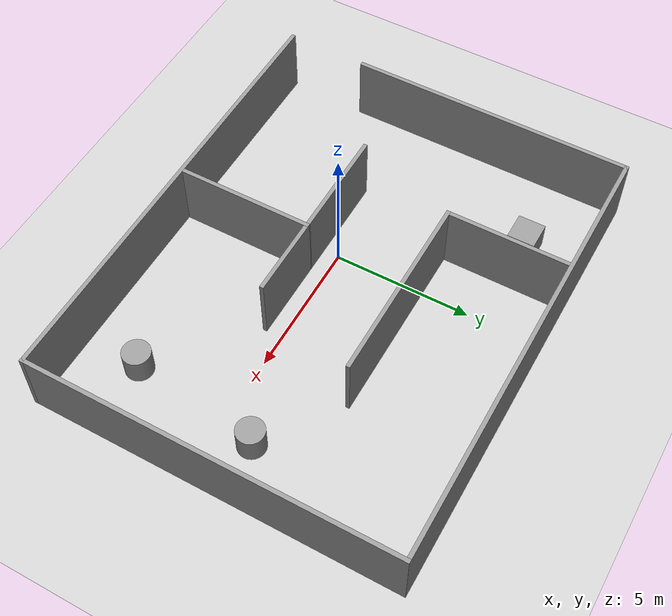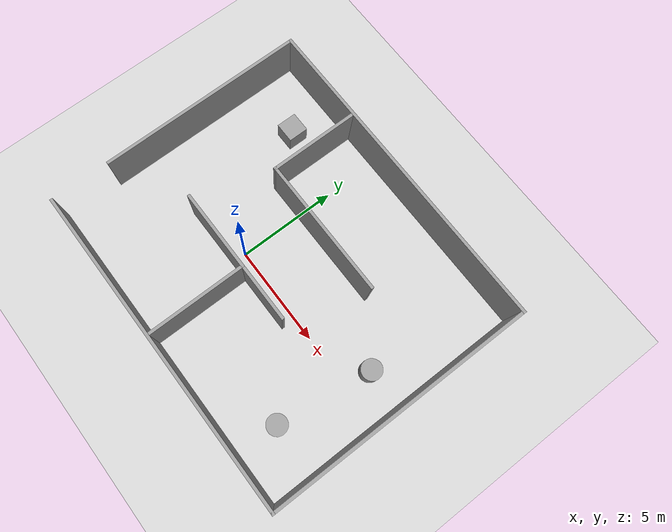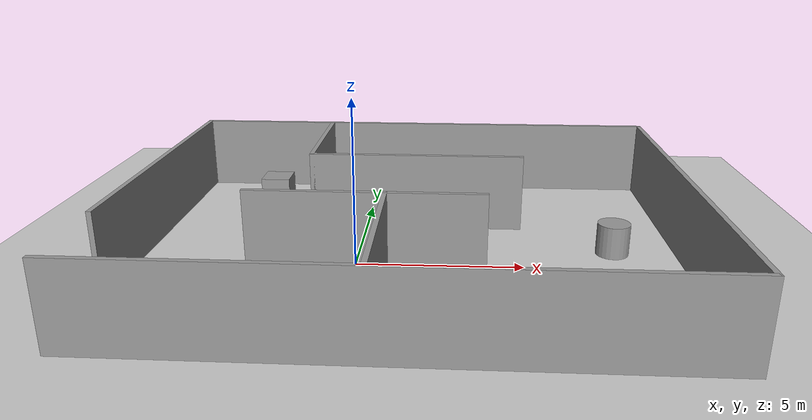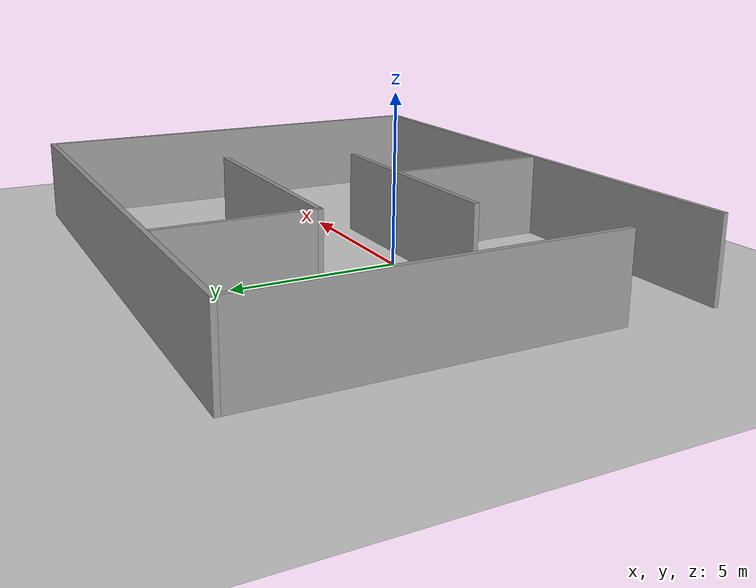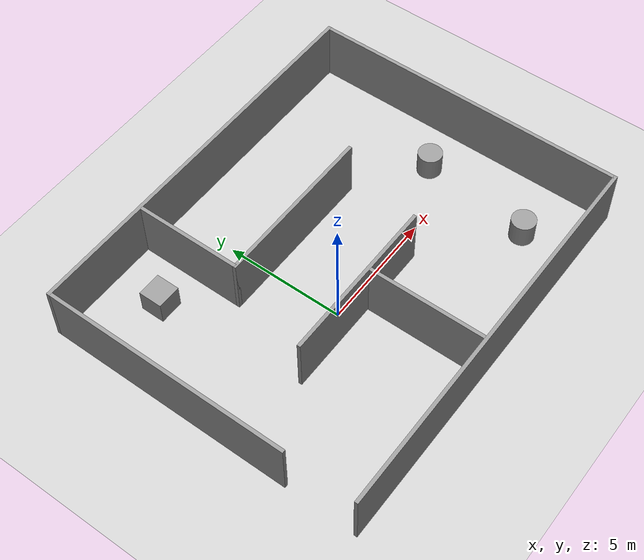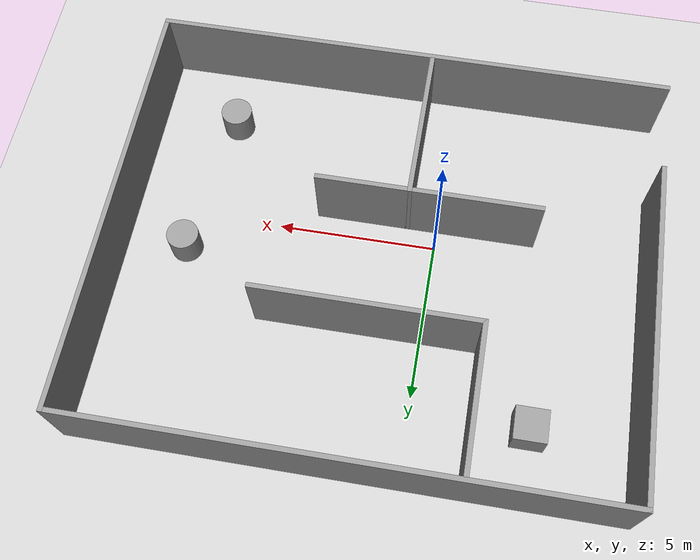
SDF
<sdf version='1.7'>
  <world name='default'>
    <light name='sun' type='directional'>
      <cast_shadows>1</cast_shadows>
      <pose>0 0 10 0 -0 0</pose>
      <diffuse>0.8 0.8 0.8 1</diffuse>
      <specular>0.2 0.2 0.2 1</specular>
      <attenuation>
        <range>1000</range>
        <constant>0.9</constant>
        <linear>0.01</linear>
        <quadratic>0.001</quadratic>
      </attenuation>
      <direction>-0.5 0.1 -0.9</direction>
      <spot>
        <inner_angle>0</inner_angle>
        <outer_angle>0</outer_angle>
        <falloff>0</falloff>
      </spot>
    </light>
    <model name='ground_plane'>
      <static>1</static>
      <link name='link'>
        <collision name='collision'>
          <geometry>
            <plane>
              <normal>0 0 1</normal>
              <size>100 100</size>
            </plane>
          </geometry>
          <surface>
            <friction>
              <ode>
                <mu>100</mu>
                <mu2>50</mu2>
              </ode>
              <torsional>
                <ode />
              </torsional>
            </friction>
            <contact>
              <ode />
            </contact>
            <bounce />
          </surface>
          <max_contacts>10</max_contacts>
        </collision>
        <visual name='visual'>
          <cast_shadows>0</cast_shadows>
          <geometry>
            <plane>
              <normal>0 0 1</normal>
              <size>100 100</size>
            </plane>
          </geometry>
          <material>
            <script>
              <uri>file://media/materials/scripts/gazebo.material</uri>
              <name>Gazebo/Grey</name>
            </script>
          </material>
        </visual>
        <self_collide>0</self_collide>
        <enable_wind>0</enable_wind>
        <kinematic>0</kinematic>
      </link>
    </model>
    <gravity>0 0 -9.8</gravity>
    <magnetic_field>6e-06 2.3e-05 -4.2e-05</magnetic_field>
    <atmosphere type='adiabatic' />
    <physics type='ode'>
      <max_step_size>0.001</max_step_size>
      <real_time_factor>1</real_time_factor>
      <real_time_update_rate>1000</real_time_update_rate>
    </physics>
    <scene>
      <ambient>0.4 0.4 0.4 1</ambient>
      <background>0.7 0.7 0.7 1</background>
      <shadows>1</shadows>
    </scene>
    <audio>
      <device>default</device>
    </audio>
    <wind />
    <spherical_coordinates>
      <surface_model>EARTH_WGS84</surface_model>
      <latitude_deg>0</latitude_deg>
      <longitude_deg>0</longitude_deg>
      <elevation>0</elevation>
      <heading_deg>0</heading_deg>
    </spherical_coordinates>
    <model name='simple_rooms'>
      <pose>1.59879 1.01846 0 0 -0 0</pose>
      <link name='Wall_12'>
        <collision name='Wall_12_Collision'>
          <geometry>
            <box>
              <size>7 0.15 2.5</size>
            </box>
          </geometry>
          <pose>0 0 1.25 0 -0 0</pose>
          <max_contacts>10</max_contacts>
          <surface>
            <contact>
              <ode />
            </contact>
            <bounce />
            <friction>
              <torsional>
                <ode />
              </torsional>
              <ode />
            </friction>
          </surface>
        </collision>
        <visual name='Wall_12_Visual'>
          <pose>0 0 1.25 0 -0 0</pose>
          <geometry>
            <box>
              <size>7 0.15 2.5</size>
            </box>
          </geometry>
          <material>
            <script>
              <uri>file://media/materials/scripts/gazebo.material</uri>
              <name>Gazebo/Grey</name>
            </script>
            <ambient>1 1 1 1</ambient>
          </material>
          <meta>
            <layer>0</layer>
          </meta>
        </visual>
        <pose>0.024632 2.17553 0 0 -0 0</pose>
        <self_collide>0</self_collide>
        <enable_wind>0</enable_wind>
        <kinematic>0</kinematic>
      </link>
      <link name='Wall_18'>
        <collision name='Wall_18_Collision'>
          <geometry>
            <box>
              <size>7 0.15 2.5</size>
            </box>
          </geometry>
          <pose>0 0 1.25 0 -0 0</pose>
          <max_contacts>10</max_contacts>
          <surface>
            <contact>
              <ode />
            </contact>
            <bounce />
            <friction>
              <torsional>
                <ode />
              </torsional>
              <ode />
            </friction>
          </surface>
        </collision>
        <visual name='Wall_18_Visual'>
          <pose>0 0 1.25 0 -0 0</pose>
          <geometry>
            <box>
              <size>7 0.15 2.5</size>
            </box>
          </geometry>
          <material>
            <script>
              <uri>file://media/materials/scripts/gazebo.material</uri>
              <name>Gazebo/Grey</name>
            </script>
            <ambient>1 1 1 1</ambient>
          </material>
          <meta>
            <layer>0</layer>
          </meta>
        </visual>
        <pose>-1.22949 -1.67968 0 0 -0 0</pose>
        <self_collide>0</self_collide>
        <enable_wind>0</enable_wind>
        <kinematic>0</kinematic>
      </link>
      <link name='Wall_21'>
        <collision name='Wall_21_Collision'>
          <geometry>
            <box>
              <size>5 0.15 2.5</size>
            </box>
          </geometry>
          <pose>0 0 1.25 0 -0 0</pose>
          <max_contacts>10</max_contacts>
          <surface>
            <contact>
              <ode />
            </contact>
            <bounce />
            <friction>
              <torsional>
                <ode />
              </torsional>
              <ode />
            </friction>
          </surface>
        </collision>
        <visual name='Wall_21_Visual'>
          <pose>0 0 1.25 0 -0 0</pose>
          <geometry>
            <box>
              <size>5 0.15 2.5</size>
            </box>
          </geometry>
          <material>
            <script>
              <uri>file://media/materials/scripts/gazebo.material</uri>
              <name>Gazebo/Grey</name>
            </script>
            <ambient>1 1 1 1</ambient>
          </material>
          <meta>
            <layer>0</layer>
          </meta>
        </visual>
        <pose>-0.649388 -4.10468 0 0 -0 -1.5708</pose>
        <self_collide>0</self_collide>
        <enable_wind>0</enable_wind>
        <kinematic>0</kinematic>
      </link>
      <link name='Wall_26'>
        <collision name='Wall_26_Collision'>
          <geometry>
            <box>
              <size>4.5 0.15 2.5</size>
            </box>
          </geometry>
          <pose>0 0 1.25 0 -0 0</pose>
          <max_contacts>10</max_contacts>
          <surface>
            <contact>
              <ode />
            </contact>
            <bounce />
            <friction>
              <torsional>
                <ode />
              </torsional>
              <ode />
            </friction>
          </surface>
        </collision>
        <visual name='Wall_26_Visual'>
          <pose>0 0 1.25 0 -0 0</pose>
          <geometry>
            <box>
              <size>4.5 0.15 2.5</size>
            </box>
          </geometry>
          <material>
            <script>
              <uri>file://media/materials/scripts/gazebo.material</uri>
              <name>Gazebo/Grey</name>
            </script>
            <ambient>1 1 1 1</ambient>
          </material>
          <meta>
            <layer>0</layer>
          </meta>
        </visual>
        <pose>-3.40037 4.35053 0 0 -0 1.5708</pose>
        <self_collide>0</self_collide>
        <enable_wind>0</enable_wind>
        <kinematic>0</kinematic>
      </link>
      <link name='Wall_4'>
        <collision name='Wall_4_Collision'>
          <geometry>
            <box>
              <size>16.5 0.15 2.5</size>
            </box>
          </geometry>
          <pose>0 0 1.25 0 -0 0</pose>
          <max_contacts>10</max_contacts>
          <surface>
            <contact>
              <ode />
            </contact>
            <bounce />
            <friction>
              <torsional>
                <ode />
              </torsional>
              <ode />
            </friction>
          </surface>
        </collision>
        <visual name='Wall_4_Visual'>
          <pose>0 0 1.25 0 -0 0</pose>
          <geometry>
            <box>
              <size>16.5 0.15 2.5</size>
            </box>
          </geometry>
          <material>
            <script>
              <uri>file://media/materials/scripts/gazebo.material</uri>
              <name>Gazebo/Grey</name>
            </script>
            <ambient>1 1 1 1</ambient>
          </material>
          <meta>
            <layer>0</layer>
          </meta>
        </visual>
        <pose>-0 6.66188 0 0 -0 0</pose>
        <self_collide>0</self_collide>
        <enable_wind>0</enable_wind>
        <kinematic>0</kinematic>
      </link>
      <link name='Wall_5'>
        <collision name='Wall_5_Collision'>
          <geometry>
            <box>
              <size>13.4694 0.15 2.5</size>
            </box>
          </geometry>
          <pose>0 0 1.25 0 -0 0</pose>
          <max_contacts>10</max_contacts>
          <surface>
            <contact>
              <ode />
            </contact>
            <bounce />
            <friction>
              <torsional>
                <ode />
              </torsional>
              <ode />
            </friction>
          </surface>
        </collision>
        <visual name='Wall_5_Visual'>
          <pose>0 0 1.25 0 -0 0</pose>
          <geometry>
            <box>
              <size>13.4694 0.15 2.5</size>
            </box>
          </geometry>
          <material>
            <script>
              <uri>file://media/materials/scripts/gazebo.material</uri>
              <name>Gazebo/Grey</name>
            </script>
            <ambient>1 1 1 1</ambient>
          </material>
          <meta>
            <layer>0</layer>
          </meta>
        </visual>
        <pose>8.175 -0.002185 0 0 -0 -1.5708</pose>
        <self_collide>0</self_collide>
        <enable_wind>0</enable_wind>
        <kinematic>0</kinematic>
      </link>
      <link name='Wall_6'>
        <collision name='Wall_6_Collision'>
          <geometry>
            <box>
              <size>16.5 0.15 2.5</size>
            </box>
          </geometry>
          <pose>0 0 1.25 0 -0 0</pose>
          <max_contacts>10</max_contacts>
          <surface>
            <contact>
              <ode />
            </contact>
            <bounce />
            <friction>
              <torsional>
                <ode />
              </torsional>
              <ode />
            </friction>
          </surface>
        </collision>
        <visual name='Wall_6_Visual'>
          <pose>0 0 1.25 0 -0 0</pose>
          <geometry>
            <box>
              <size>16.5 0.15 2.5</size>
            </box>
          </geometry>
          <material>
            <script>
              <uri>file://media/materials/scripts/gazebo.material</uri>
              <name>Gazebo/Grey</name>
            </script>
            <ambient>1 1 1 1</ambient>
          </material>
          <meta>
            <layer>0</layer>
          </meta>
        </visual>
        <pose>-0 -6.66188 0 0 -0 3.14159</pose>
        <self_collide>0</self_collide>
        <enable_wind>0</enable_wind>
        <kinematic>0</kinematic>
      </link>
      <link name='Wall_8'>
        <collision name='Wall_8_Collision'>
          <geometry>
            <box>
              <size>10.4694 0.15 2.5</size>
            </box>
          </geometry>
          <pose>0 0 1.25 0 -0 0</pose>
          <max_contacts>10</max_contacts>
          <surface>
            <contact>
              <ode />
            </contact>
            <bounce />
            <friction>
              <torsional>
                <ode />
              </torsional>
              <ode />
            </friction>
          </surface>
        </collision>
        <visual name='Wall_8_Visual'>
          <pose>0 0 1.25 0 -0 0</pose>
          <geometry>
            <box>
              <size>10.4694 0.15 2.5</size>
            </box>
          </geometry>
          <material>
            <script>
              <uri>file://media/materials/scripts/gazebo.material</uri>
              <name>Gazebo/Grey</name>
            </script>
            <ambient>1 1 1 1</ambient>
          </material>
          <meta>
            <layer>0</layer>
          </meta>
        </visual>
        <pose>-8.175 1.49781 0 0 -0 -1.5708</pose>
        <self_collide>0</self_collide>
        <enable_wind>0</enable_wind>
        <kinematic>0</kinematic>
      </link>
      <static>1</static>
    </model>
    <model name='unit_cylinder'>
      <pose>7.15091 -3.4818 0.5 0 -0 0</pose>
      <link name='link'>
        <inertial>
          <mass>1</mass>
          <inertia>
            <ixx>0.145833</ixx>
            <ixy>0</ixy>
            <ixz>0</ixz>
            <iyy>0.145833</iyy>
            <iyz>0</iyz>
            <izz>0.125</izz>
          </inertia>
          <pose>0 0 0 0 -0 0</pose>
        </inertial>
        <collision name='collision'>
          <geometry>
            <cylinder>
              <radius>0.5</radius>
              <length>1</length>
            </cylinder>
          </geometry>
          <max_contacts>10</max_contacts>
          <surface>
            <contact>
              <ode />
            </contact>
            <bounce />
            <friction>
              <torsional>
                <ode />
              </torsional>
              <ode />
            </friction>
          </surface>
        </collision>
        <visual name='visual'>
          <geometry>
            <cylinder>
              <radius>0.5</radius>
              <length>1</length>
            </cylinder>
          </geometry>
          <material>
            <script>
              <name>Gazebo/Grey</name>
              <uri>file://media/materials/scripts/gazebo.material</uri>
            </script>
          </material>
        </visual>
        <self_collide>0</self_collide>
        <enable_wind>0</enable_wind>
        <kinematic>0</kinematic>
      </link>
    </model>
    <model name='unit_box'>
      <pose>-3.53207 5.4858 0.5 0 -0 0</pose>
      <link name='link'>
        <inertial>
          <mass>1</mass>
          <inertia>
            <ixx>0.166667</ixx>
            <ixy>0</ixy>
            <ixz>0</ixz>
            <iyy>0.166667</iyy>
            <iyz>0</iyz>
            <izz>0.166667</izz>
          </inertia>
          <pose>0 0 0 0 -0 0</pose>
        </inertial>
        <collision name='collision'>
          <geometry>
            <box>
              <size>1 1 1</size>
            </box>
          </geometry>
          <max_contacts>10</max_contacts>
          <surface>
            <contact>
              <ode />
            </contact>
            <bounce />
            <friction>
              <torsional>
                <ode />
              </torsional>
              <ode />
            </friction>
          </surface>
        </collision>
        <visual name='visual'>
          <geometry>
            <box>
              <size>1 1 1</size>
            </box>
          </geometry>
          <material>
            <script>
              <name>Gazebo/Grey</name>
              <uri>file://media/materials/scripts/gazebo.material</uri>
            </script>
          </material>
        </visual>
        <self_collide>0</self_collide>
        <enable_wind>0</enable_wind>
        <kinematic>0</kinematic>
      </link>
    </model>
    <model name='unit_cylinder_0'>
      <pose>7.78579 1.23375 0.5 0 -0 0</pose>
      <link name='link'>
        <inertial>
          <mass>1</mass>
          <inertia>
            <ixx>0.145833</ixx>
            <ixy>0</ixy>
            <ixz>0</ixz>
            <iyy>0.145833</iyy>
            <iyz>0</iyz>
            <izz>0.125</izz>
          </inertia>
          <pose>0 0 0 0 -0 0</pose>
        </inertial>
        <collision name='collision'>
          <geometry>
            <cylinder>
              <radius>0.5</radius>
              <length>1</length>
            </cylinder>
          </geometry>
          <max_contacts>10</max_contacts>
          <surface>
            <contact>
              <ode />
            </contact>
            <bounce />
            <friction>
              <torsional>
                <ode />
              </torsional>
              <ode />
            </friction>
          </surface>
        </collision>
        <visual name='visual'>
          <geometry>
            <cylinder>
              <radius>0.5</radius>
              <length>1</length>
            </cylinder>
          </geometry>
          <material>
            <script>
              <name>Gazebo/Grey</name>
              <uri>file://media/materials/scripts/gazebo.material</uri>
            </script>
          </material>
        </visual>
        <self_collide>0</self_collide>
        <enable_wind>0</enable_wind>
        <kinematic>0</kinematic>
      </link>
    </model>
    <gui fullscreen='0'>
      <camera name='user_camera'>
        <pose>11.2088 -13.0366 27.099 0 1.1138 1.73538</pose>
        <view_controller>orbit</view_controller>
        <projection_type>perspective</projection_type>
      </camera>
    </gui>
  </world>
</sdf>
